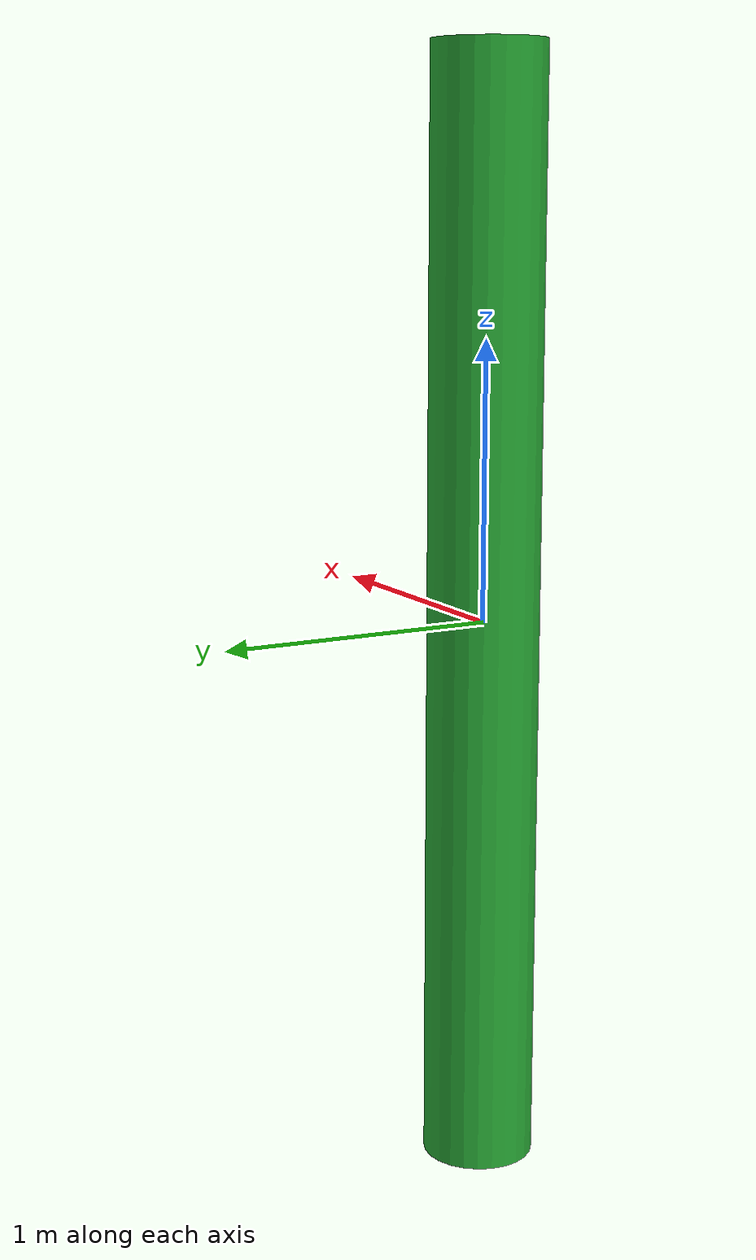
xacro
<?xml version="1.0"?>
<robot xmlns:xacro="http://ros.org/wiki/xacro">

<xacro:include filename="$(find tuw_gazebo_models)/models/inertia_tensors.xacro"/>

<!--xacro:macro name="GreenCylinder"-->

    <xacro:property name="xx"  value="0" />
    <xacro:property name="yy"  value="0" />
    <xacro:property name="zz"  value="2" />

    <xacro:property name="ParrentLink2ThisLink"> <!--parrent link to this joint tf-->
	<origin xyz="${xx} ${yy} ${zz}"  rpy="0 0 0"/>
    </xacro:property>

    <xacro:property name="ThisLink2Inert"> <!--this link 2 inertial center tf, mass data-->
	<cylinder_inertial_with_origin radius="0.2" length="4" mass="100"> <origin xyz="0 0 0" rpy="0 0 0"/> </cylinder_inertial_with_origin>
    </xacro:property>

    <xacro:property name="ThisLink2XML"> <!--this link 2 mesh center tf, file-->
    <origin xyz="0 0 0" rpy="0 0 0"/>
  	<geometry> <cylinder length="4" radius="0.2"/> </geometry>
  	<material name="green"/>
    </xacro:property>

    <link name="cylinder">
  	<xacro:insert_block name="ThisLink2Inert"/>
  	<visual>    <xacro:insert_block name="ThisLink2XML"/> </visual>
  	<collision> <xacro:insert_block name="ThisLink2XML"/> </collision>
    </link>
    <gazebo reference="cylinder">
	<material>Gazebo/Green</material>
	<selfCollide>false</selfCollide>
    </gazebo>

<!--/xacro:macro-->

</robot>
